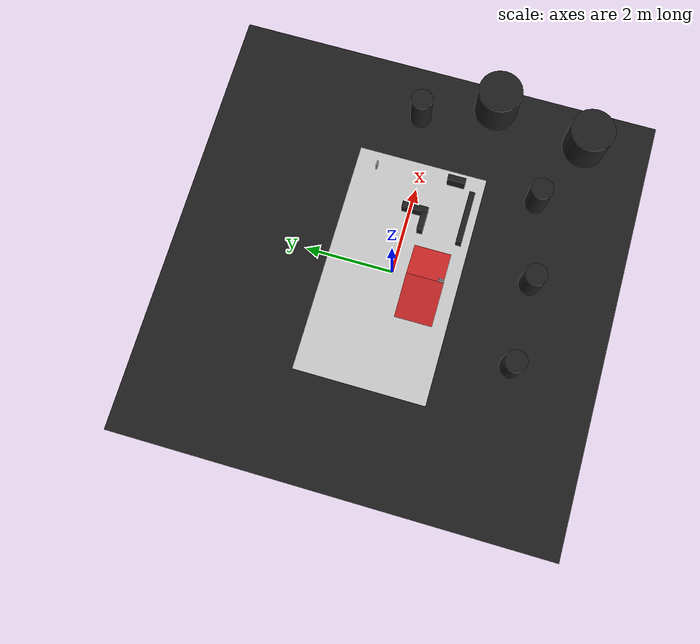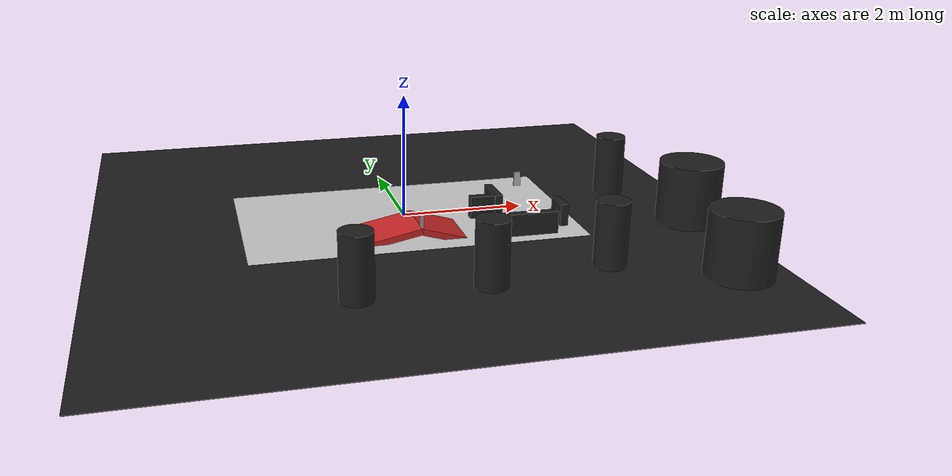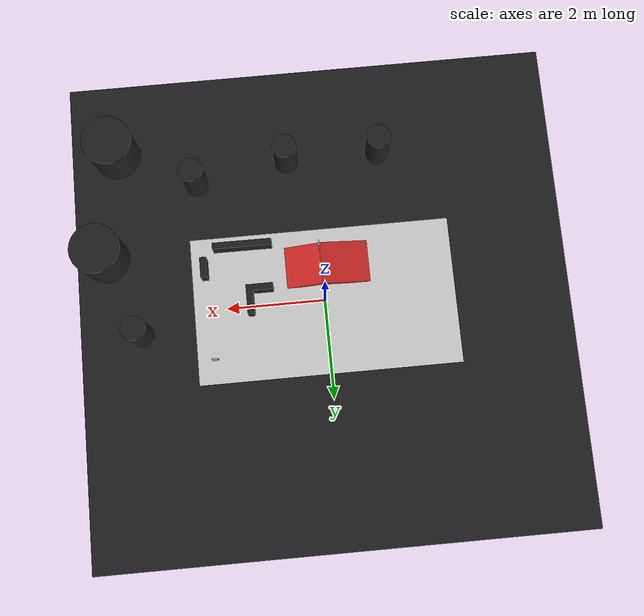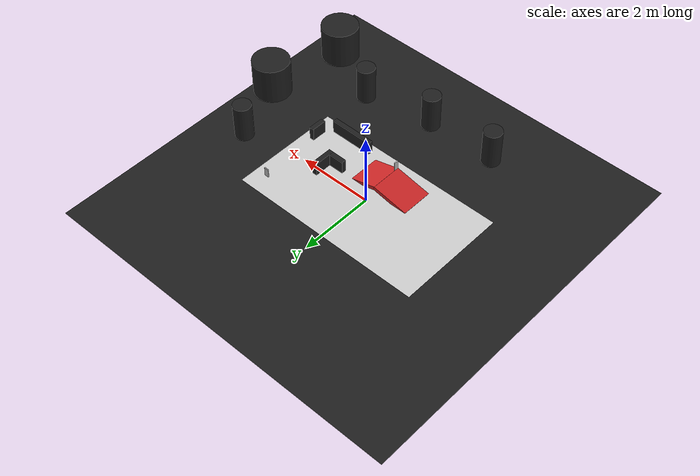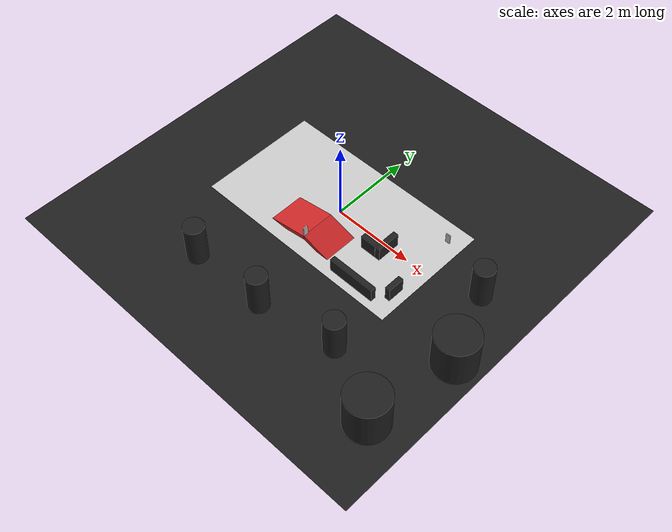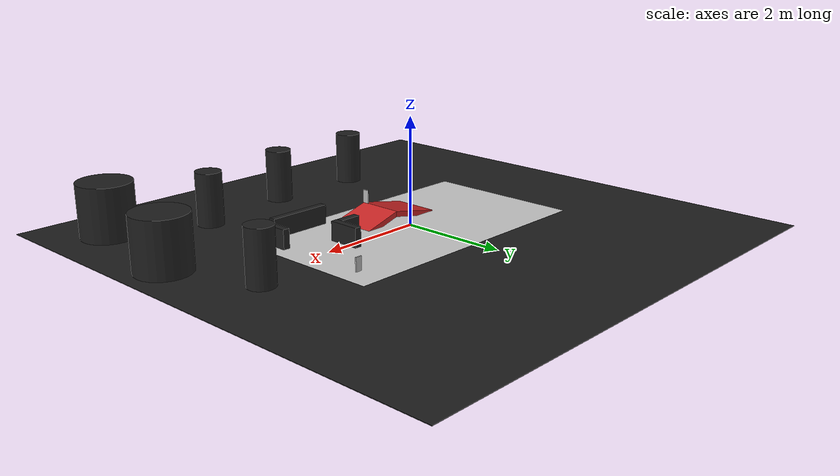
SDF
<sdf version="1.6">
 <world name="default">
  <scene>
   <ambient>0 0 0 1</ambient>
   <shadows>0</shadows>
   <grid>0</grid>
   <background>0.7 0.7 0.7 1</background>
  </scene>
  <model name="course">
   <static>1</static>
   <link name="course_link">
    <collision name="course_collision">
     <geometry><plane><normal>0 0 1</normal><size>5.325 3</size></plane></geometry>
     <surface><friction><ode><mu>100</mu><mu2>50</mu2></ode></friction></surface>
    </collision>
    <visual name="course_visual">
     <cast_shadows>0</cast_shadows>
     <geometry><plane><normal>0 0 1</normal><size>5.325 3</size></plane></geometry>
     <material>
      <script>
       <uri>model://turtlebot3_autorace/course/materials/scripts</uri>
       <uri>model://turtlebot3_autorace/course/materials/textures</uri>
       <name>course</name>
      </script>
     </material>
    </visual>
   </link>
  </model>
  <model name="box">
   <static>1</static>
   <pose>-0.457855 -0.747305 0.047618 0 -0.197895 0</pose>
   <link name="ramp_link">
    <collision name="collision"><geometry><box><size>1 0.85718 0.1</size></box></geometry></collision>
    <visual name="visual">
     <geometry><box><size>1 0.85718 0.1</size></box></geometry>
     <material>
      <script><name>Gazebo/Red</name><uri>file://media/materials/scripts/gazebo.material</uri></script>
     </material>
    </visual>
   </link>
  </model>
  <model name="box1">
   <static>1</static>
   <pose>0.488795 -0.744861 0.007633 0 0.283367 0</pose>
   <link name="ramp_link1">
    <collision name="collision"><geometry><box><size>1 0.84788 0.1</size></box></geometry></collision>
    <visual name="visual">
     <geometry><box><size>1 0.84788 0.1</size></box></geometry>
     <material>
      <script><name>Gazebo/Red</name><uri>file://media/materials/scripts/gazebo.material</uri></script>
     </material>
    </visual>
   </link>
  </model>
  <model name="traffic_parking">
   <static>1</static>
   <link name="box">
    <collision name="collision"><geometry><box><size>0.12 0.025 0.25</size></box></geometry></collision>
    <visual name="visual">
     <geometry><box><size>0.12 0.025 0.25</size></box></geometry>
     <material>
      <script>
       <uri>model://turtlebot3_autorace/traffic_parking/materials/scripts</uri>
       <uri>model://turtlebot3_autorace/traffic_parking/materials/textures</uri>
       <name>traffic_parking</name>
      </script>
     </material>
    </visual>
   </link>
   <pose>2.29576 1.0096 0.13 0 0 -0.003706</pose>
  </model>
  <model name="traffic_stop">
   <static>1</static>
   <link name="box">
    <collision name="collision"><geometry><box><size>0.12 0.025 0.25</size></box></geometry></collision>
    <visual name="visual">
     <geometry><box><size>0.12 0.025 0.25</size></box></geometry>
     <material>
      <script>
       <uri>model://turtlebot3_autorace/traffic_stop/materials/scripts</uri>
       <uri>model://turtlebot3_autorace/traffic_stop/materials/textures</uri>
       <name>traffic_stop</name>
      </script>
     </material>
    </visual>
   </link>
   <pose>0.030116 -1.10967 0.322152 0 0 -1.57493</pose>
  </model>
  <light name="sun" type="directional">
   <pose>0 0 10 0 -0 0</pose>
   <diffuse>0.8 0.8 0.8 1</diffuse>
   <specular>0.1 0.1 0.1 1</specular>
   <attenuation>
    <range>1000</range>
    <constant>0.9</constant>
    <linear>0.01</linear>
    <quadratic>0.001</quadratic>
   </attenuation>
   <direction>-0.5 0.5 -1</direction>
  </light>
  <model name="ground2">
   <pose>0 0 -0.1 0 -0 0</pose>
   <static>1</static>
   <link name="ground">
    <collision name="ground_coll"><geometry><box><size>8 8 0.01</size></box></geometry></collision>
    <visual name="ground_vis">
     <geometry><box><size>10 10 0.01</size></box></geometry>
     <material>
      <script><uri>file://media/materials/scripts/gazebo.material</uri><name>Gazebo/FlatBlack</name></script>
     </material>
    </visual>
   </link>
  </model>
  <gravity>0 0 -9.8</gravity>
  <magnetic_field>6e-06 2.3e-05 -4.2e-05</magnetic_field>
  <atmosphere type="adiabatic"/>
  <physics name="default_physics" default="0" type="ode">
   <max_step_size>0.001</max_step_size>
   <real_time_factor>1</real_time_factor>
   <real_time_update_rate>1000</real_time_update_rate>
  </physics>
  <spherical_coordinates>
   <surface_model>EARTH_WGS84</surface_model>
   <latitude_deg>0</latitude_deg>
   <longitude_deg>0</longitude_deg>
   <elevation>0</elevation>
   <heading_deg>0</heading_deg>
  </spherical_coordinates>
  <light name="user_point_light_2" type="point">
   <pose>-0.948146 0.604519 1 0 -0 0</pose>
   <diffuse>0.5 0.5 0.5 1</diffuse>
   <specular>0.1 0.1 0.1 1</specular>
   <attenuation>
    <range>20</range>
    <constant>0.5</constant>
    <linear>0.01</linear>
    <quadratic>0.001</quadratic>
   </attenuation>
   <cast_shadows>0</cast_shadows>
   <direction>0 0 -1</direction>
  </light>
  <light name="user_point_light_6" type="point">
   <pose>1.63854 1.69565 1 0 -0 0</pose>
   <diffuse>0.5 0.5 0.5 1</diffuse>
   <specular>0.1 0.1 0.1 1</specular>
   <attenuation>
    <range>20</range>
    <constant>0.5</constant>
    <linear>0.01</linear>
    <quadratic>0.001</quadratic>
   </attenuation>
   <cast_shadows>0</cast_shadows>
   <direction>0 0 -1</direction>
  </light>
  <light name="user_point_light_7" type="point">
   <pose>0.42 -3.31 1 0 -0 0</pose>
   <diffuse>0.5 0.5 0.5 1</diffuse>
   <specular>0.1 0.1 0.1 1</specular>
   <attenuation>
    <range>20</range>
    <constant>0.5</constant>
    <linear>0.01</linear>
    <quadratic>0.001</quadratic>
   </attenuation>
   <cast_shadows>0</cast_shadows>
   <direction>0 0 -1</direction>
  </light>
  <light name="user_point_light_8" type="point">
   <pose>-1.8 1.5 1 0 -0 0</pose>
   <diffuse>0.5 0.5 0.5 1</diffuse>
   <specular>0.1 0.1 0.1 1</specular>
   <attenuation>
    <range>20</range>
    <constant>0.5</constant>
    <linear>0.01</linear>
    <quadratic>0.001</quadratic>
   </attenuation>
   <cast_shadows>0</cast_shadows>
   <direction>0 0 -1</direction>
  </light>
  <model name="unit_cylinder">
   <pose>4.05689 -3.44878 0.499991 -0 -0 -0</pose>
   <link name="link">
    <inertial>
     <mass>1</mass>
     <inertia><ixx>0.145833</ixx><ixy>0</ixy><ixz>0</ixz><iyy>0.145833</iyy><iyz>0</iyz><izz>0.125</izz></inertia>
    </inertial>
    <collision name="collision">
     <geometry><cylinder><radius>0.5</radius><length>1</length></cylinder></geometry>
    </collision>
    <visual name="visual">
     <geometry><cylinder><radius>0.5</radius><length>1</length></cylinder></geometry>
     <material>
      <script><name>Gazebo/FlatBlack</name><uri>file://media/materials/scripts/gazebo.material</uri></script>
     </material>
    </visual>
   </link>
  </model>
  <model name="unit_cylinder_0">
   <pose>4.39775 -1.26863 0.499996 0 -0 0</pose>
   <link name="link">
    <inertial>
     <mass>1</mass>
     <inertia><ixx>0.145833</ixx><ixy>0</ixy><ixz>0</ixz><iyy>0.145833</iyy><iyz>0</iyz><izz>0.125</izz></inertia>
    </inertial>
    <collision name="collision">
     <geometry><cylinder><radius>0.5</radius><length>1</length></cylinder></geometry>
    </collision>
    <visual name="visual">
     <geometry><cylinder><radius>0.5</radius><length>1</length></cylinder></geometry>
     <material>
      <script><name>Gazebo/FlatBlack</name><uri>file://media/materials/scripts/gazebo.material</uri></script>
     </material>
    </visual>
   </link>
  </model>
  <model name="unit_cylinder_clone">
   <pose>-1.34404 -3.03269 0.499998 -1e-06 1e-06 -7e-06</pose>
   <link name="link">
    <inertial>
     <mass>1</mass>
     <inertia><ixx>0.145833</ixx><ixy>0</ixy><ixz>0</ixz><iyy>0.145833</iyy><iyz>0</iyz><izz>0.125</izz></inertia>
    </inertial>
    <collision name="collision">
     <geometry><cylinder><radius>0.245311</radius><length>1</length></cylinder></geometry>
    </collision>
    <visual name="visual">
     <geometry><cylinder><radius>0.245311</radius><length>1</length></cylinder></geometry>
     <material>
      <script><name>Gazebo/FlatBlack</name><uri>file://media/materials/scripts/gazebo.material</uri></script>
     </material>
    </visual>
   </link>
  </model>
  <model name="unit_cylinder_clone_clone">
   <pose>0.549876 -3.00379 0.5 0 -0 1e-06</pose>
   <link name="link">
    <inertial>
     <mass>1</mass>
     <inertia><ixx>0.145833</ixx><ixy>0</ixy><ixz>0</ixz><iyy>0.145833</iyy><iyz>0</iyz><izz>0.125</izz></inertia>
    </inertial>
    <collision name="collision">
     <geometry><cylinder><radius>0.245311</radius><length>1</length></cylinder></geometry>
    </collision>
    <visual name="visual">
     <geometry><cylinder><radius>0.245311</radius><length>1</length></cylinder></geometry>
     <material>
      <script><name>Gazebo/FlatBlack</name><uri>file://media/materials/scripts/gazebo.material</uri></script>
     </material>
    </visual>
   </link>
  </model>
  <model name="unit_cylinder_clone_clone_0">
   <pose>3.73954 0.368559 0.5 0 -0 1e-06</pose>
   <link name="link">
    <inertial>
     <mass>1</mass>
     <inertia><ixx>0.145833</ixx><ixy>0</ixy><ixz>0</ixz><iyy>0.145833</iyy><iyz>0</iyz><izz>0.125</izz></inertia>
    </inertial>
    <collision name="collision">
     <geometry><cylinder><radius>0.245311</radius><length>1</length></cylinder></geometry>
    </collision>
    <visual name="visual">
     <geometry><cylinder><radius>0.245311</radius><length>1</length></cylinder></geometry>
     <material>
      <script><name>Gazebo/FlatBlack</name><uri>file://media/materials/scripts/gazebo.material</uri></script>
     </material>
    </visual>
   </link>
  </model>
  <model name="unit_cylinder_clone_clone_1">
   <pose>2.43689 -2.68355 0.499998 1e-06 1e-06 5e-06</pose>
   <link name="link">
    <inertial>
     <mass>1</mass>
     <inertia><ixx>0.145833</ixx><ixy>0</ixy><ixz>0</ixz><iyy>0.145833</iyy><iyz>0</iyz><izz>0.125</izz></inertia>
    </inertial>
    <collision name="collision">
     <geometry><cylinder><radius>0.245311</radius><length>1</length></cylinder></geometry>
    </collision>
    <visual name="visual">
     <geometry><cylinder><radius>0.245311</radius><length>1</length></cylinder></geometry>
     <material>
      <script><name>Gazebo/FlatBlack</name><uri>file://media/materials/scripts/gazebo.material</uri></script>
     </material>
    </visual>
   </link>
  </model>
  <model name="unit_box">
   <pose>1.49795 -0.110631 0.178706 -1.3e-05 2e-06 0.002245</pose>
   <link name="link">
    <inertial>
     <mass>1</mass>
     <inertia>
      <ixx>0.166667</ixx>
      <ixy>0</ixy>
      <ixz>0</ixz>
      <iyy>0.166667</iyy>
      <iyz>0</iyz>
      <izz>0.166667</izz>
     </inertia>
    </inertial>
    <collision name="collision">
     <geometry><box><size>0.129637 0.592244 0.357422</size></box></geometry>
    </collision>
    <visual name="visual">
     <geometry><box><size>0.129637 0.592244 0.357422</size></box></geometry>
     <material>
      <script><name>Gazebo/FlatBlack</name><uri>file://media/materials/scripts/gazebo.material</uri></script>
     </material>
    </visual>
   </link>
  </model>
  <model name="unit_box_clone">
   <pose>1.22732 -0.341579 0.17871 -8e-06 2e-06 1.56686</pose>
   <link name="link">
    <inertial>
     <mass>1</mass>
     <inertia>
      <ixx>0.166667</ixx>
      <ixy>0</ixy>
      <ixz>0</ixz>
      <iyy>0.166667</iyy>
      <iyz>0</iyz>
      <izz>0.166667</izz>
     </inertia>
    </inertial>
    <collision name="collision">
     <geometry><box><size>0.129637 0.409337 0.357423</size></box></geometry>
    </collision>
    <visual name="visual">
     <geometry><box><size>0.129637 0.409337 0.357423</size></box></geometry>
     <material>
      <script><name>Gazebo/FlatBlack</name><uri>file://media/materials/scripts/gazebo.material</uri></script>
     </material>
    </visual>
   </link>
  </model>
  <model name="unit_box_clone_clone">
   <pose>1.58087 -1.25342 0.178707 -8e-06 -0 1.56704</pose>
   <link name="link">
    <inertial>
     <mass>1</mass>
     <inertia>
      <ixx>0.166667</ixx>
      <ixy>0</ixy>
      <ixz>0</ixz>
      <iyy>0.166667</iyy>
      <iyz>0</iyz>
      <izz>0.166667</izz>
     </inertia>
    </inertial>
    <collision name="collision"><geometry><box><size>0.129637 1.191 0.357423</size></box></geometry></collision>
    <visual name="visual">
     <geometry><box><size>0.129637 1.191 0.357423</size></box></geometry>
     <material>
      <script><name>Gazebo/FlatBlack</name><uri>file://media/materials/scripts/gazebo.material</uri></script>
     </material>
    </visual>
   </link>
  </model>
  <model name="unit_box_clone_0">
   <pose>2.38354 -0.840654 0.178711 3e-06 0 0.002819</pose>
   <link name="link">
    <inertial>
     <mass>1</mass>
     <inertia>
      <ixx>0.166667</ixx>
      <ixy>0</ixy>
      <ixz>0</ixz>
      <iyy>0.166667</iyy>
      <iyz>0</iyz>
      <izz>0.166667</izz>
     </inertia>
    </inertial>
    <collision name="collision">
     <geometry><box><size>0.129637 0.413814 0.357423</size></box></geometry>
    </collision>
    <visual name="visual">
     <geometry><box><size>0.129637 0.413814 0.357423</size></box></geometry>
     <material>
      <script><name>Gazebo/FlatBlack</name><uri>file://media/materials/scripts/gazebo.material</uri></script>
     </material>
    </visual>
   </link>
  </model>
 </world>
</sdf>
